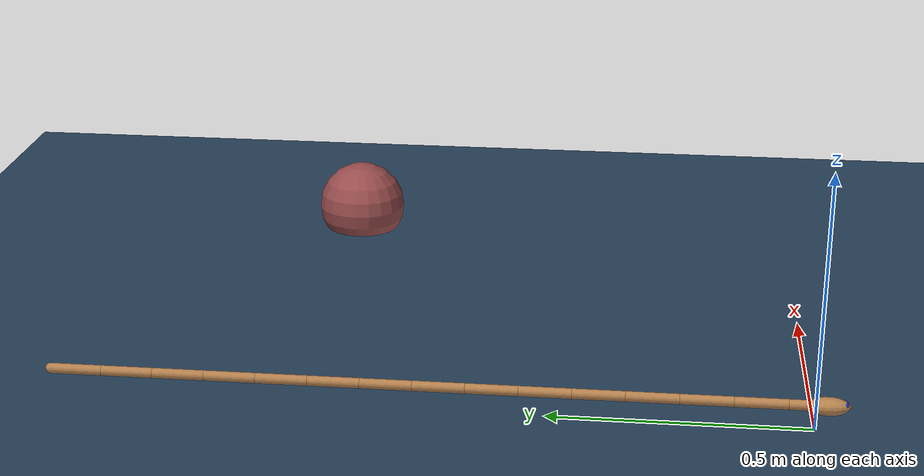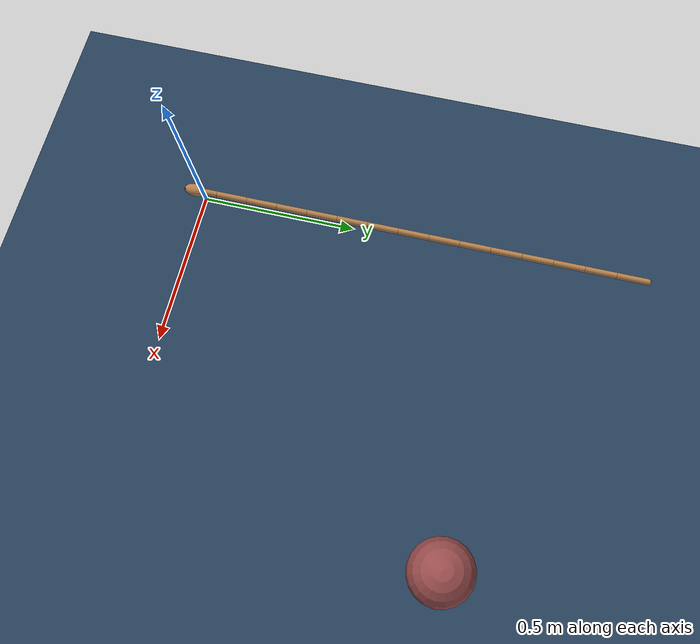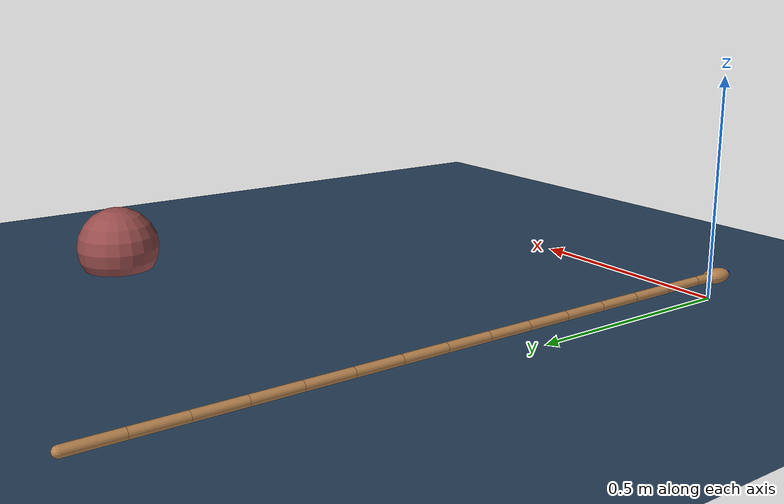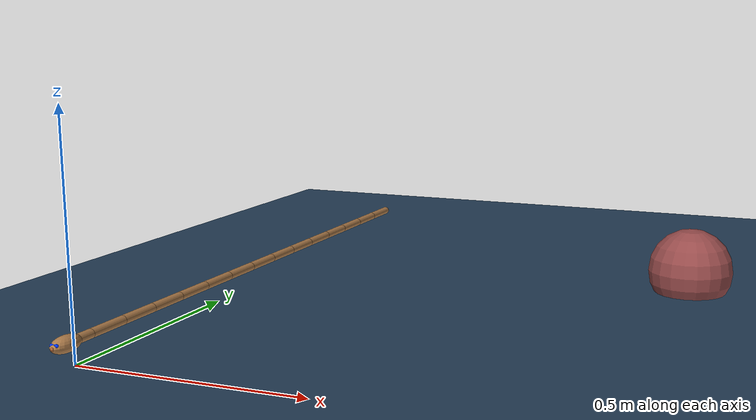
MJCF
<mujoco model="merged">
  <option timestep="0.002" density="3000">

    <flag contact="disable"/>

  </option>
  <visual>
    <headlight ambient=".4 .4 .4" diffuse=".8 .8 .8" specular="0.1 0.1 0.1"/>
    <map znear=".01"/>
    <quality shadowsize="2048"/>
  </visual>
  <default>

    <default class="swimmer">
      <joint type="hinge" pos="0 -.05 0" axis="0 0 1" limited="true" solreflimit=".05 1" solimplimit="0 .8 .1" armature="1e-6"/>
      <default class="inertial">
        <geom type="box" size=".001 .05 .01" rgba="0 0 0 0" mass=".01"/>
      </default>
      <default class="visual">
        <geom type="capsule" size=".01" fromto="0 -.05 0 0 .05 0" material="self" mass="0"/>
      </default>
      <site size=".01" rgba="0 0 0 0"/>
    </default>
    <default class="free">
      <joint limited="false" stiffness="0" armature="0"/>
    </default>
    <motor gear="5e-4" ctrllimited="true" ctrlrange="-1 1"/>

  </default>
  <asset>

      <texture name="skybox" type="skybox" builtin="gradient" rgb1=".4 .6 .8" rgb2="0 0 0"
               width="800" height="800" mark="random" markrgb="1 1 1"/>

    <texture name="grid" type="2d" builtin="checker" rgb1=".1 .2 .3" rgb2=".2 .3 .4" width="300" height="300" mark="edge" markrgb=".2 .3 .4"/>
    <material name="grid" texture="grid" texrepeat="1 1" texuniform="true" reflectance=".2"/>
    <material name="self" rgba=".7 .5 .3 1"/>
    <material name="self_default" rgba=".7 .5 .3 1"/>
    <material name="self_highlight" rgba="0 .5 .3 1"/>
    <material name="effector" rgba=".7 .4 .2 1"/>
    <material name="effector_default" rgba=".7 .4 .2 1"/>
    <material name="effector_highlight" rgba="0 .5 .3 1"/>
    <material name="decoration" rgba=".3 .5 .7 1"/>
    <material name="eye" rgba="0 .2 1 1"/>
    <material name="target" rgba=".6 .3 .3 1"/>
    <material name="target_default" rgba=".6 .3 .3 1"/>
    <material name="target_highlight" rgba=".6 .3 .3 .4"/>
    <material name="site" rgba=".5 .5 .5 .3"/>

  </asset>
  <worldbody>

    <geom name="ground" type="plane" size="2 2 0.1" material="grid"/>
    <body name="head" pos="0 0 .05" childclass="swimmer">
      <light name="light_1" diffuse=".8 .8 .8" pos="0 0 1.5"/>
      <geom name="head" type="ellipsoid" size=".02 .04 .017" pos="0 -.022 0"  material="self" mass="0"/>
      <geom name="nose" type="sphere" pos="0 -.06 0" size=".004" material="effector" mass="0"/>
      <geom name="eyes" type="capsule" fromto="-.006 -.054 .005 .006 -.054 .005" size=".004" material="eye" mass="0"/>
      <camera name="tracking1" pos="0.0 -0.5 1.25" xyaxes="1 0 0 0 1 1" mode="trackcom" fovy="60"/>
      <camera name="tracking2" pos="-2.25 1.25 0.375" xyaxes="0 -1 0 .3 0 1" mode="trackcom" fovy="60"/>
      <camera name="eyes" pos="0 -.058 .005" xyaxes="-1 0 0 0 0 1"/>
      <joint name="rootx" class="free" type="slide" axis="1 0 0" pos="0 -.05 0"/>
      <joint name="rooty" class="free" type="slide" axis="0 1 0" pos="0 -.05 0"/>
      <joint name="rootz" class="free" type="hinge" axis="0 0 1" pos="0 -.05 0"/>
      <geom name="inertial" class="inertial"/>
      <geom name="visual" class="visual"/>
      <site name="head"/>
      <body name="segment_0" pos="0 .1 0">
        <geom class="visual" name="visual_0"/>
        <geom class="inertial" name="inertial_0"/>
        <site name="site_0"/>
        <joint name="joint_0" range="-24.0 24.0"/>
        <body name="segment_1" pos="0 .1 0">
          <geom class="visual" name="visual_1"/>
          <geom class="inertial" name="inertial_1"/>
          <site name="site_1"/>
          <joint name="joint_1" range="-24.0 24.0"/>
          <body name="segment_2" pos="0 .1 0">
            <geom class="visual" name="visual_2"/>
            <geom class="inertial" name="inertial_2"/>
            <site name="site_2"/>
            <joint name="joint_2" range="-24.0 24.0"/>
            <body name="segment_3" pos="0 .1 0">
              <geom class="visual" name="visual_3"/>
              <geom class="inertial" name="inertial_3"/>
              <site name="site_3"/>
              <joint name="joint_3" range="-24.0 24.0"/>
              <body name="segment_4" pos="0 .1 0">
                <geom class="visual" name="visual_4"/>
                <geom class="inertial" name="inertial_4"/>
                <site name="site_4"/>
                <joint name="joint_4" range="-24.0 24.0"/>
                <body name="segment_5" pos="0 .1 0">
                  <geom class="visual" name="visual_5"/>
                  <geom class="inertial" name="inertial_5"/>
                  <site name="site_5"/>
                  <joint name="joint_5" range="-24.0 24.0"/>
                  <body name="segment_6" pos="0 .1 0">
                    <geom class="visual" name="visual_6"/>
                    <geom class="inertial" name="inertial_6"/>
                    <site name="site_6"/>
                    <joint name="joint_6" range="-24.0 24.0"/>
                    <body name="segment_7" pos="0 .1 0">
                      <geom class="visual" name="visual_7"/>
                      <geom class="inertial" name="inertial_7"/>
                      <site name="site_7"/>
                      <joint name="joint_7" range="-24.0 24.0"/>
                      <body name="segment_8" pos="0 .1 0">
                        <geom class="visual" name="visual_8"/>
                        <geom class="inertial" name="inertial_8"/>
                        <site name="site_8"/>
                        <joint name="joint_8" range="-24.0 24.0"/>
                        <body name="segment_9" pos="0 .1 0">
                          <geom class="visual" name="visual_9"/>
                          <geom class="inertial" name="inertial_9"/>
                          <site name="site_9"/>
                          <joint name="joint_9" range="-24.0 24.0"/>
                          <body name="segment_10" pos="0 .1 0">
                            <geom class="visual" name="visual_10"/>
                            <geom class="inertial" name="inertial_10"/>
                            <site name="site_10"/>
                            <joint name="joint_10" range="-24.0 24.0"/>
                            <body name="segment_11" pos="0 .1 0">
                              <geom class="visual" name="visual_11"/>
                              <geom class="inertial" name="inertial_11"/>
                              <site name="site_11"/>
                              <joint name="joint_11" range="-24.0 24.0"/>
                              <body name="segment_12" pos="0 .1 0">
                                <geom class="visual" name="visual_12"/>
                                <geom class="inertial" name="inertial_12"/>
                                <site name="site_12"/>
                                <joint name="joint_12" range="-24.0 24.0"/>
                                <body name="segment_13" pos="0 .1 0">
                                  <geom class="visual" name="visual_13"/>
                                  <geom class="inertial" name="inertial_13"/>
                                  <site name="site_13"/>
                                  <joint name="joint_13" range="-24.0 24.0"/>
                                </body>
                              </body>
                            </body>
                          </body>
                        </body>
                      </body>
                    </body>
                  </body>
                </body>
              </body>
            </body>
          </body>
        </body>
      </body>
    </body>
    <body name="target" mocap="true" pos="1 1 .05">
      <geom name="target" type="sphere" size=".1" material="target" mass="0"/>
    </body>
    <light name="target_light" diffuse="1 1 1" pos="1 1 1.5"/>

  </worldbody>
  <actuator>

    <motor name="motor_0" joint="joint_0"/>
    <motor name="motor_1" joint="joint_1"/>
    <motor name="motor_2" joint="joint_2"/>
    <motor name="motor_3" joint="joint_3"/>
    <motor name="motor_4" joint="joint_4"/>
    <motor name="motor_5" joint="joint_5"/>
    <motor name="motor_6" joint="joint_6"/>
    <motor name="motor_7" joint="joint_7"/>
    <motor name="motor_8" joint="joint_8"/>
    <motor name="motor_9" joint="joint_9"/>
    <motor name="motor_10" joint="joint_10"/>
    <motor name="motor_11" joint="joint_11"/>
    <motor name="motor_12" joint="joint_12"/>
    <motor name="motor_13" joint="joint_13"/>

  </actuator>
  <sensor>

    <framepos name="nose_pos" objtype="geom" objname="nose"/>
    <framepos name="target_pos" objtype="geom" objname="target"/>
    <framexaxis name="head_xaxis" objtype="xbody" objname="head"/>
    <frameyaxis name="head_yaxis" objtype="xbody" objname="head"/>
    <velocimeter name="head_vel" site="head"/>
    <gyro name="head_gyro" site="head"/>
    <velocimeter name="velocimeter_0" site="site_0"/>
    <gyro name="gyro_0" site="site_0"/>
    <velocimeter name="velocimeter_1" site="site_1"/>
    <gyro name="gyro_1" site="site_1"/>
    <velocimeter name="velocimeter_2" site="site_2"/>
    <gyro name="gyro_2" site="site_2"/>
    <velocimeter name="velocimeter_3" site="site_3"/>
    <gyro name="gyro_3" site="site_3"/>
    <velocimeter name="velocimeter_4" site="site_4"/>
    <gyro name="gyro_4" site="site_4"/>
    <velocimeter name="velocimeter_5" site="site_5"/>
    <gyro name="gyro_5" site="site_5"/>
    <velocimeter name="velocimeter_6" site="site_6"/>
    <gyro name="gyro_6" site="site_6"/>
    <velocimeter name="velocimeter_7" site="site_7"/>
    <gyro name="gyro_7" site="site_7"/>
    <velocimeter name="velocimeter_8" site="site_8"/>
    <gyro name="gyro_8" site="site_8"/>
    <velocimeter name="velocimeter_9" site="site_9"/>
    <gyro name="gyro_9" site="site_9"/>
    <velocimeter name="velocimeter_10" site="site_10"/>
    <gyro name="gyro_10" site="site_10"/>
    <velocimeter name="velocimeter_11" site="site_11"/>
    <gyro name="gyro_11" site="site_11"/>
    <velocimeter name="velocimeter_12" site="site_12"/>
    <gyro name="gyro_12" site="site_12"/>
    <velocimeter name="velocimeter_13" site="site_13"/>
    <gyro name="gyro_13" site="site_13"/>

  </sensor>
</mujoco>
